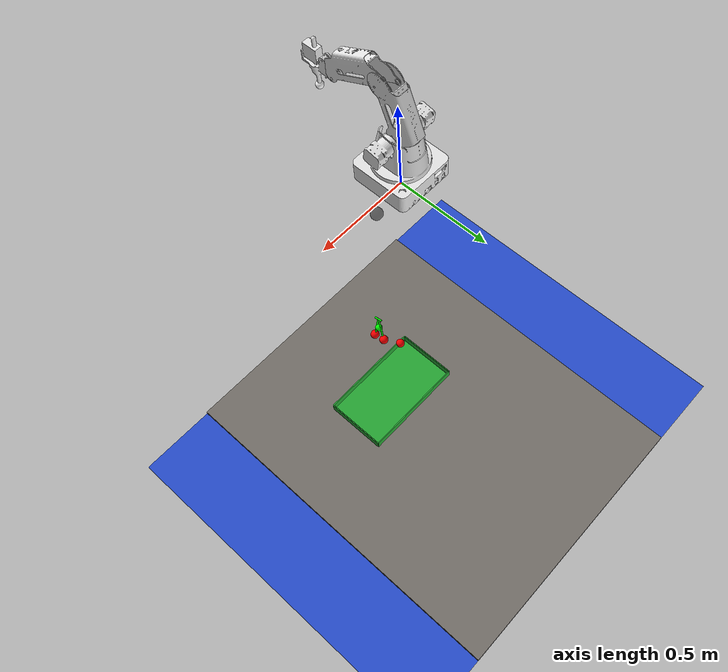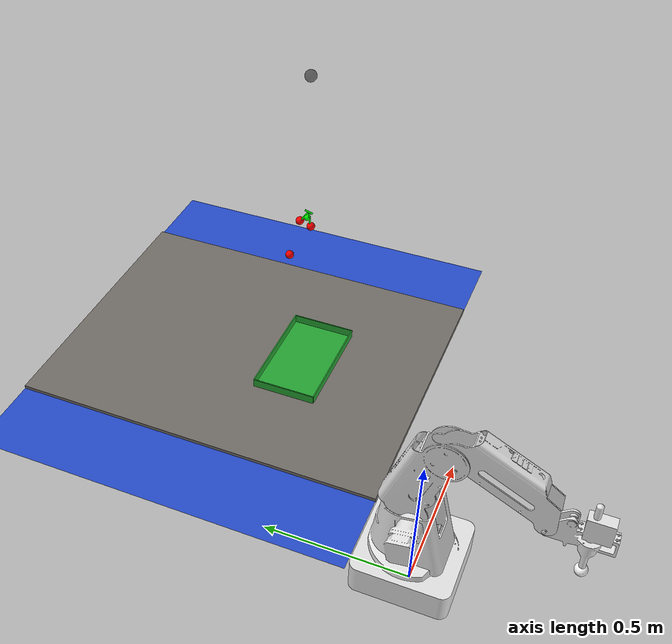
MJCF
<?xml version="1.0" encoding="utf-8"?>
<mujoco>
	<compiler angle="radian" coordinate="local" meshdir="../stls/dobot" texturedir="../textures"></compiler>
	<option solver="Newton" timestep="0.002">
		<flag warmstart="enable"></flag>
	</option>
	<visual>
		<quality shadowsize="4096"></quality>
	</visual>

	<include file="shared_push.xml"></include>

	<worldbody>

		<include file="base.xml"></include>

		<include file="robot_push.xml"></include>

		<include file="cherry.xml"></include>

	</worldbody>

</mujoco>

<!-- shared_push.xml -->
<mujoco>
    <asset>
        <texture type="skybox" builtin="gradient" rgb1="0 0 0" rgb2="0.5 0.5 1" width="32" height="32"></texture>
        <texture name="texture_block" file="block.png" gridsize="3 4" gridlayout=".U..LFRB.D.."></texture>
        <texture name="red_block" file="block_red.png" gridsize="3 4" gridlayout=".U..LFRB.D.."></texture>
        <texture name="yellow_block" file="block_yellow.png" gridsize="3 4" gridlayout=".U..LFRB.D.."></texture>
        <texture name="green_block" file="block_green.png" gridsize="3 4" gridlayout=".U..LFRB.D.."></texture>
        <texture name="blue_block" file="block_blue.png" gridsize="3 4" gridlayout=".U..LFRB.D.."></texture>
        <texture name="pink_block" file="block_pink.png" gridsize="3 4" gridlayout=".U..LFRB.D.."></texture>
        <texture name="magenta_block" file="block_magenta.png" gridsize="3 4" gridlayout=".U..LFRB.D.."></texture>
        <texture name="dark_blue_block" file="block_dark_blue.png" gridsize="3 4" gridlayout=".U..LFRB.D.."></texture>
        <texture name="dark_green_block" file="block_dark_green.png" gridsize="3 4" gridlayout=".U..LFRB.D.."></texture>
        <texture name="arm_tex" file="arm.png" type="2d"></texture>
        <texture name="base_tex" file="base.png" type="2d"></texture>
        <texture name="base_blue_tex" file="base_blue.png" type="2d"></texture>
        <texture name="base_green_tex" file="base_green.png" type="2d"></texture>
        <texture name="gripper_tex" file="gripper.png" type="2d"></texture>
        <!--  Cherry textures  -->
        <texture name="cherry_red" file="cherry.png"></texture>
        <texture name="stem_green" file="stem.png"></texture>

        <material name="table_mat" specular="0" shininess="0.5" reflectance="0" rgba="0.6 0.6 0.6 1" texture="base_tex"></material>
        <material name="floor_mat" specular="0" shininess="0.5" reflectance="0" rgba="1 1 1 1" texture="base_blue_tex"></material>
        <material name="tray_mat" specular="0" shininess="0.5" reflectance="0" rgba="1 1 1 1" texture="base_green_tex"></material>
        <material name="block_mat" specular="0" shininess="0.5" reflectance="0" rgba="1 1 1 1" texture="texture_block"></material>
        <material name="red_block_mat" specular="0" shininess="0.5" reflectance="0" rgba="1 1 1 1" texture="red_block"></material>
        <material name="yellow_block_mat" specular="0" shininess="0.5" reflectance="0" rgba="1 1 1 1" texture="yellow_block"></material>
        <material name="green_block_mat" specular="0" shininess="0.5" reflectance="0" rgba="1 1 1 1" texture="green_block"></material>
        <material name="blue_block_mat" specular="0" shininess="0.5" reflectance="0" rgba="1 1 1 1" texture="blue_block"></material>
        <material name="dark_blue_block_mat" specular="0" shininess="0.5" reflectance="0" rgba="1 1 1 1" texture="dark_blue_block"></material>
        <material name="dark_green_block_mat" specular="0" shininess="0.5" reflectance="0" rgba="1 1 1 1" texture="dark_green_block"></material>
        <material name="pink_block_mat" specular="0" shininess="0.5" reflectance="0" rgba="1 1 1 1" texture="pink_block"></material>
        <material name="magenta_block_mat" specular="0" shininess="0.5" reflectance="0" rgba="1 1 1 1" texture="magenta_block"></material>
        <material name="puck_mat" specular="0" shininess="0.5" reflectance="0" rgba="0.2 0.2 0.2 1" texture="base_tex"></material>
        <material name="dobot_mat" shininess="0.03" specular="0.4" rgba ="1 1 1 0"></material>
        <material name="arm_mat" shininess="0.03" specular="0.4" texture="arm_tex"></material>
        <material name="gripper_mat" shininess="0.03" specular="0.4" texture="gripper_tex"></material>
        <!--  Cherry materials  -->
        <material name="cherry_mat" specular="0" shininess="0.5" reflectance="0" rgba="1 1 1 1" texture="cherry_red"></material>
        <material name="stem_mat" specular="0" shininess="0.5" reflectance="0" rgba="1 1 1 1" texture="stem_green"></material>

        <mesh file="fpart1.stl" name="dobot:rear_arm_link" scale="0.002 0.002 0.002"></mesh>
		<mesh file="fpart2.stl" name="dobot:front_arm_link" scale="0.002 0.002 0.002"></mesh>
		<mesh file="fpart3.stl" name="dobot:lift_link" scale="0.002 0.002 0.002"></mesh>
		<mesh file="fpart4.stl" name="dobot:base_link" scale="0.002 0.002 0.002"></mesh>
        <mesh file="fpart5.stl" name="dobot:gripper_link" scale="0.002 0.002 0.002"></mesh>
		<mesh file="leftArm.stl" name="dobot:l_gripper_link" scale="0.002 0.002 0.002"></mesh>
		<mesh file="rightArm.stl" name="dobot:r_gripper_link" scale="0.002 0.002 0.002"></mesh>

    </asset>

    <equality>
        <weld body1="dobot:mocap" body2="dobot:gripper_link" solimp="0.9 0.95 0.001" solref="0.02 1"></weld>
    </equality>

    <default>
        <default class="dobot:fetch">
            <geom margin="0.001" material="dobot_mat" rgba="1 1 1 1" solimp="0.99 0.99 0.01" solref="0.01 1" type="mesh" user="0" group="1"></geom>
            <joint armature="1" damping="50" frictionloss="0" stiffness="0"></joint>

            <default class="dobot:fetchGripper">
                <geom condim="4" margin="0.001" type="box" user="0" rgba="0.356 0.361 0.376 1.0"></geom>
                <joint armature="100" damping="1000" limited="true" solimplimit="0.99 0.999 0.01" solreflimit="0.01 1" type="slide"></joint>
            </default>

            <default class="dobot:white">
                <geom rgba="0.9 0.9 0.9 1.0"></geom>
            </default>
            <default class="dobot:black">
                <geom rgba="0.2 0.2 0.2 1.0"></geom>
            </default>
        </default>
    </default>
</mujoco>

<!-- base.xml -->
<mujoco>
    <geom name="floor0" pos="0.8 0.9 0" size="0.85 0.70 1" type="plane" condim="3" material="floor_mat"></geom>
    <body name="floor0" pos="0.8 0.75 0">
        <site name = "target0" type="sphere" pos="0 0 0.5" size="0.015" rgba="1 0 0 1" /><!-- End Goal: Red -->
        <!--site name = "subgoal_0" type="sphere" pos="0 0 0.5" size="0.015" rgba="1 0 1 1" /--><!-- Subgoal 1: Purple -->
        <!--site name = "subgoal_1" type="sphere" pos="0 0 0.5" size="0.015" rgba="0 1 0 0" /--><!-- Subgoal 2: Green -->
        <!--site name = "subgoal_2" type="sphere" pos="0 0 0.5" size="0.015" rgba="0.5 0.5 0.5 0" /--><!-- Subgoal 3: Gray -->
        <!--site name = "subgoal_3" type="sphere" pos="0 0 0.5" size="0.015" rgba="1 1 1 0" /--><!-- Subgoal 4: White -->
        <!--site name = "subgoal_4" type="sphere" pos="0 0 0.5" size="0.015" rgba="0 0 0 0" /--><!-- Subgoal 5: Black -->
        <body pos="0 0.15 0" name="table0">
            <geom name="table0" size="0.55 0.7 0.01" type="box" mass="2000" material="table_mat"></geom>
            <body name="tray" pos = "0 -0.215 0.01">
                <geom name="tray_base" size="0.2060 0.120 0.001" type="box" mass="300" material="tray_mat"></geom>
                <geom name="mark" conaffinity="0" contype="0" size="0.02" pos="0 0 1.2" rgba="0 0 0 0.5" type="sphere" group="2"></geom>
                <geom size="0.2060 0.002 0.022" type="box" mass="300" pos="0 0.120 0.01" material="tray_mat"></geom>
                <geom size="0.2060 0.002 0.022" type="box" mass="300" pos="0 -0.120 0.01" material="tray_mat"></geom>
                <geom size="0.002 0.120 0.022" type="box" mass="300" pos="0.2060 0 0.01" material="tray_mat"></geom>
                <geom size="0.002 0.120 0.022" type="box" mass="300" pos="-0.2060 0 0.01" material="tray_mat"></geom>
            </body>
            <camera euler="0.78 0 0" fovy="40" name="camera0" pos="0 -0.215 1.2" mode="targetbody" target="tray"></camera>
        </body>
        <camera axisangle="1 -1 -1 0" fovy="40" name="webcam" pos="0 0 1.0" mode="fixed"></camera>
    </body>

    <light directional="false" ambient="0.2 0.2 0.2" diffuse="0.8 0.8 0.8" specular="0.3 0.3 0.3" castshadow="false" pos="0.8 0.9 3" name="light0"></light>

</mujoco>

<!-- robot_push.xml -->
<mujoco>
	<body mocap="true" name="dobot:mocap" pos="1 1 1">
		<geom conaffinity="0" contype="0" pos="0 0 0" rgba="0 0.5 0 0" size="0.005 0.005 0.005" type="box"></geom>
		<geom conaffinity="0" contype="0" pos="0 0 0" rgba="0 0.5 0 0" size="1 0.005 0.005" type="box"></geom>
		<geom conaffinity="0" contype="0" pos="0 0 0" rgba="0 0.5 0 0" size="0.005 1 0.001" type="box"></geom>
		<geom conaffinity="0" contype="0" pos="0 0 0" rgba="0 0.5 0 0" size="0.005 0.005 1" type="box"></geom>

	</body>
	<body childclass="dobot:fetch" name="dobot:base_link" pos="0 0 0.1" euler="0 0 0">
		<joint armature="0.0001" axis="1 0 0" damping="1e+11" name="dobot:slide0" pos="0 0 0" type="slide"></joint>
		<joint armature="0.0001" axis="0 1 0" damping="1e+11" name="dobot:slide1" pos="0 0 0" type="slide"></joint>
		<joint armature="0.0001" axis="0 0 1" damping="1e+11" name="dobot:slide2" pos="0 0 0" type="slide"></joint>
			<inertial diaginertia="1.2869 1.2236 0.9868" mass="1.5" pos="0 0 0"></inertial>
			<geom mesh="dobot:base_link" name="dobot:base_link" material="arm_mat" class="dobot:white"></geom>
			<body name="dobot:lift_link" pos="0 0 0.066" euler="0 0 0">
				<inertial diaginertia="1.2869 1.2236 0.9868" mass="0.5" pos="0 0 0"></inertial>
				<geom mesh="dobot:lift_link" name="dobot:lift_link" material="arm_mat" class="dobot:white"></geom>
				<joint name="dobot:base_pan" type="hinge" pos="0 0 0" axis="0 0 1" range="-1.57 1.57" limited="true"/>
				<body name="dobot:rear_arm_link" pos="0 0 0.16" euler="0 0 0">
					<inertial diaginertia="1.2869 1.2236 0.9868" mass="0.85" pos="0 0 0" ></inertial>
					<geom mesh="dobot:rear_arm_link" name="dobot:rear_arm_link" pos = "0 0 0" material="arm_mat" class="dobot:white"></geom>
					<joint name="dobot:base_tilt" type="hinge" pos="0 0 0" axis="1 0 0" range="0 1.4835" limited="true"/>
					<body name="dobot:front_arm_link" pos="0 -0.098 0.246" euler="0 0 0">
						<inertial diaginertia="1.2869 1.2236 0.9868" mass="0.85" pos="0 0 0"></inertial>
						<geom mesh="dobot:front_arm_link" name="dobot:front_arm_link" pos = "0 0 0" material="arm_mat" class="dobot:white"></geom>
						<joint name="dobot:elbow_flex" type="hinge" pos="0 0 0" axis="1 0 0" range="-1.658 0.174" limited="true"/>
						<body name="dobot:gripper_link" pos="0 -0.26 -0.136" euler="0 0 0">
							<inertial diaginertia="1.2869 1.2236 0.9868" mass="0.3294" pos="0 0 0"></inertial>
							<geom mesh="dobot:gripper_link" name="dobot:gripper_link" pos = "0 0 0" material="gripper_mat" class="dobot:white"></geom>
							<joint name="dobot:wrist_flex" type="hinge" pos="0 0 0" axis="1 0 0"/>

							<body childclass="dobot:fetchGripper" name="dobot:l_gripper_link" pos="-0.1425 0 -0.09" euler="0 0 3.14">
								<inertial diaginertia="1.2869 1.2236 0.9868" mass="0.3294" pos="0 0 0"></inertial>
								<geom conaffinity="0" contype="0" mesh="dobot:l_gripper_link" name="dobot:l_gripper_link" pos = "0 0 0" rgba="0 0.5 0 0" material="gripper_mat"></geom>
								<joint name="dobot:l_gripper_joint" type="slide" axis="1 0 0" limited="true" range="0 0.025"/>
							</body>
							<body childclass="dobot:fetchGripper" name="dobot:r_gripper_link" pos="-0.1025 0 -0.09" euler="0 0 3.14">
								<inertial diaginertia="1.2869 1.2236 0.9868" mass="0.3294" pos="0 0 0"></inertial>
								<geom conaffinity="0" contype="0" mesh="dobot:r_gripper_link" name="dobot:r_gripper_link" pos = "0 0 0" rgba="0 0.5 0 0" material="gripper_mat"></geom>
								<joint name="dobot:r_gripper_joint" type="slide" axis="1 0 0" limited="true" range = "-0.025 0"/>
							</body>
							<site name="dobot:grip" pos="0 -0.123 -0.14" rgba="1 1 1 1" size="0.02 0.02 0.02"></site>
						</body>
					</body>
				</body>
			</body>
		</body>

</mujoco>

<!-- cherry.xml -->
<mujoco model="cherry">
    <!-- ======= Cherry ======= -->
    <body name="object0" pos="0.9 0.75 0.5" euler="0.3 -0.3 0">
        <geom mass="0.5" name="fruit_1" type="sphere" pos="0 -.022 .11" size=".015 .015" rgba="1 0 0 2"/>
        <geom mass="0.5" name="fruit_2" type="sphere" pos="0 .022 .11" size=".015 .015" rgba="1 0 0 2"/>
        <geom mass="0.1" name="stem_1" type="cylinder" pos="0 .01 .15" size=".003 .035" rgba="0 1 0 2" euler="0.25 0 0"/>
        <geom mass="0.1" name="stem_2" type="cylinder" pos="0 -.01 .15" size=".003 .035" rgba="0 1 0 2" euler="-0.25 0 0"/>
        <geom mass="0.1" name="rod" type="cylinder" pos="0 0 .185" size=".003 .015" rgba="0 1 0 2" euler="1.58 0 0"/>
        <site name="site:object0" pos="0 0 .15" size="0.012 0.012 0.012" rgba="0 1 0 1" type="sphere"/>

        <joint name="object0:joint" type="free" damping="0.01"></joint>
    </body>
</mujoco>
